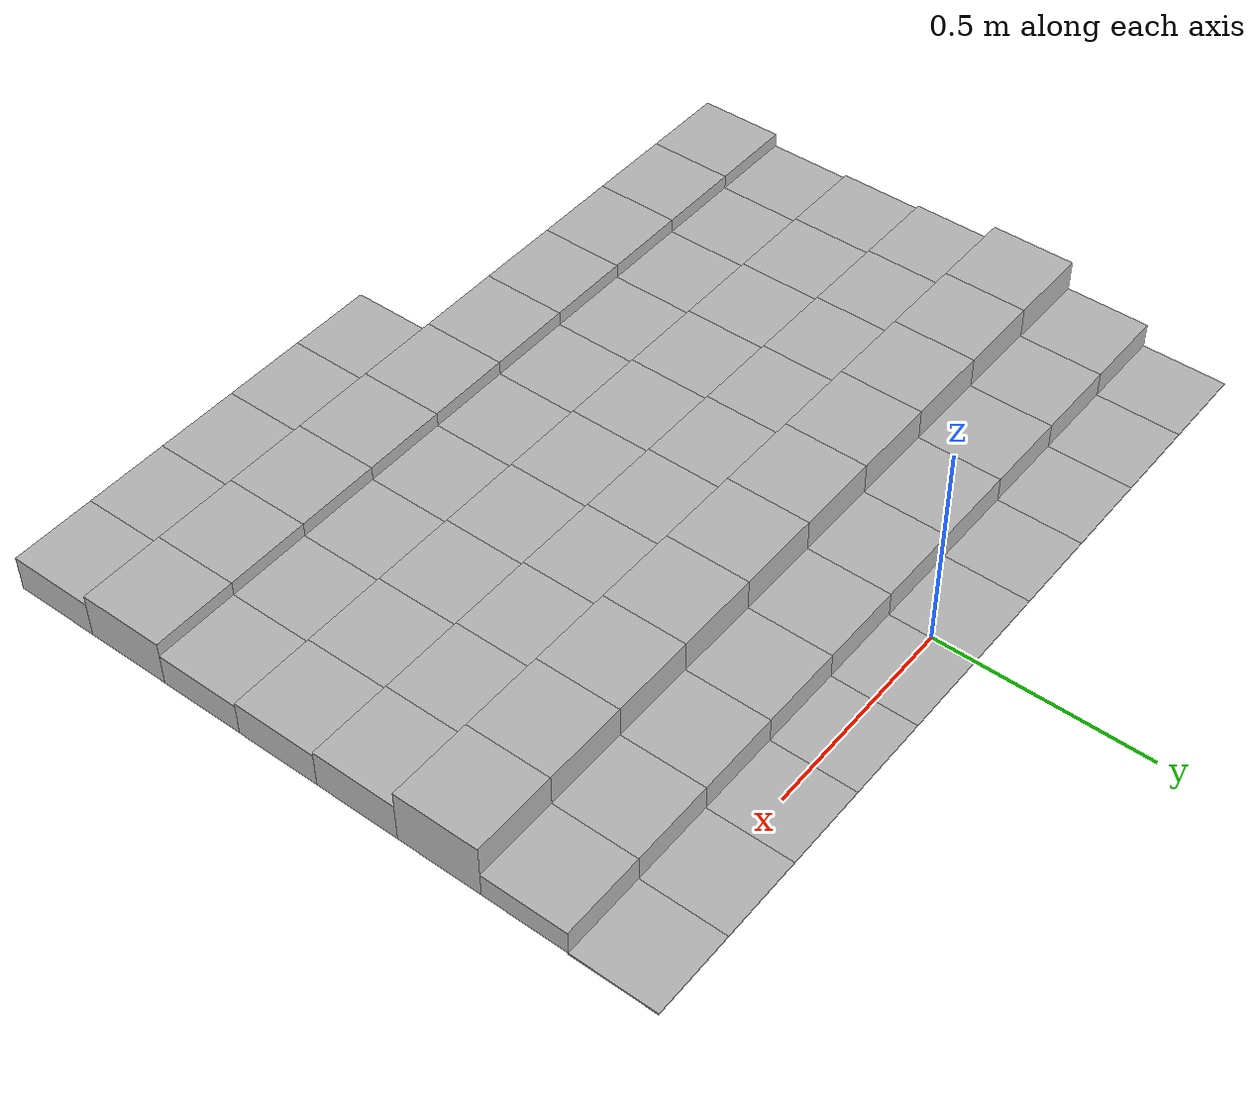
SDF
<sdf version="1.6">
 <model name="Terrain">
  <static>true</static>
  <link name="box_0_0">
   <pose>-0.9 0.0 -0.00175128134562 0 0 0</pose>
   <inertial>
    <mass>1.0</mass>
    <inertia><ixx>0.0</ixx><ixy>0.0</ixy><ixz>0.0</ixz><iyy>0.0</iyy><iyz>0.0</iyz><izz>0.0</izz></inertia>
   </inertial>
   <collision name="collision"><geometry><box><size>0.2 0.2 -0.00350256269124</size></box></geometry></collision>
   <visual name="visual"><geometry><box><size>0.2 0.2 -0.00350256269124</size></box></geometry></visual>
  </link>
  <link name="box_0_1">
   <pose>-0.7 0.0 -0.00175128134562 0 0 0</pose>
   <inertial>
    <mass>1.0</mass>
    <inertia><ixx>0.0</ixx><ixy>0.0</ixy><ixz>0.0</ixz><iyy>0.0</iyy><iyz>0.0</iyz><izz>0.0</izz></inertia>
   </inertial>
   <collision name="collision"><geometry><box><size>0.2 0.2 -0.00350256269124</size></box></geometry></collision>
   <visual name="visual"><geometry><box><size>0.2 0.2 -0.00350256269124</size></box></geometry></visual>
  </link>
  <link name="box_0_2">
   <pose>-0.5 0.0 -0.00175128134562 0 0 0</pose>
   <inertial>
    <mass>1.0</mass>
    <inertia><ixx>0.0</ixx><ixy>0.0</ixy><ixz>0.0</ixz><iyy>0.0</iyy><iyz>0.0</iyz><izz>0.0</izz></inertia>
   </inertial>
   <collision name="collision"><geometry><box><size>0.2 0.2 -0.00350256269124</size></box></geometry></collision>
   <visual name="visual"><geometry><box><size>0.2 0.2 -0.00350256269124</size></box></geometry></visual>
  </link>
  <link name="box_0_3">
   <pose>-0.3 0.0 -0.00175128134562 0 0 0</pose>
   <inertial>
    <mass>1.0</mass>
    <inertia><ixx>0.0</ixx><ixy>0.0</ixy><ixz>0.0</ixz><iyy>0.0</iyy><iyz>0.0</iyz><izz>0.0</izz></inertia>
   </inertial>
   <collision name="collision"><geometry><box><size>0.2 0.2 -0.00350256269124</size></box></geometry></collision>
   <visual name="visual"><geometry><box><size>0.2 0.2 -0.00350256269124</size></box></geometry></visual>
  </link>
  <link name="box_0_4">
   <pose>-0.1 0.0 -0.00175128134562 0 0 0</pose>
   <inertial>
    <mass>1.0</mass>
    <inertia><ixx>0.0</ixx><ixy>0.0</ixy><ixz>0.0</ixz><iyy>0.0</iyy><iyz>0.0</iyz><izz>0.0</izz></inertia>
   </inertial>
   <collision name="collision"><geometry><box><size>0.2 0.2 -0.00350256269124</size></box></geometry></collision>
   <visual name="visual"><geometry><box><size>0.2 0.2 -0.00350256269124</size></box></geometry></visual>
  </link>
  <link name="box_0_5">
   <pose>0.1 0.0 -0.00175128134562 0 0 0</pose>
   <inertial>
    <mass>1.0</mass>
    <inertia><ixx>0.0</ixx><ixy>0.0</ixy><ixz>0.0</ixz><iyy>0.0</iyy><iyz>0.0</iyz><izz>0.0</izz></inertia>
   </inertial>
   <collision name="collision"><geometry><box><size>0.2 0.2 -0.00350256269124</size></box></geometry></collision>
   <visual name="visual"><geometry><box><size>0.2 0.2 -0.00350256269124</size></box></geometry></visual>
  </link>
  <link name="box_0_6">
   <pose>0.3 0.0 -0.00175128134562 0 0 0</pose>
   <inertial>
    <mass>1.0</mass>
    <inertia><ixx>0.0</ixx><ixy>0.0</ixy><ixz>0.0</ixz><iyy>0.0</iyy><iyz>0.0</iyz><izz>0.0</izz></inertia>
   </inertial>
   <collision name="collision"><geometry><box><size>0.2 0.2 -0.00350256269124</size></box></geometry></collision>
   <visual name="visual"><geometry><box><size>0.2 0.2 -0.00350256269124</size></box></geometry></visual>
  </link>
  <link name="box_0_7">
   <pose>0.5 0.0 -0.00175128134562 0 0 0</pose>
   <inertial>
    <mass>1.0</mass>
    <inertia><ixx>0.0</ixx><ixy>0.0</ixy><ixz>0.0</ixz><iyy>0.0</iyy><iyz>0.0</iyz><izz>0.0</izz></inertia>
   </inertial>
   <collision name="collision"><geometry><box><size>0.2 0.2 -0.00350256269124</size></box></geometry></collision>
   <visual name="visual"><geometry><box><size>0.2 0.2 -0.00350256269124</size></box></geometry></visual>
  </link>
  <link name="box_0_8">
   <pose>0.7 0.0 -0.00175128134562 0 0 0</pose>
   <inertial>
    <mass>1.0</mass>
    <inertia><ixx>0.0</ixx><ixy>0.0</ixy><ixz>0.0</ixz><iyy>0.0</iyy><iyz>0.0</iyz><izz>0.0</izz></inertia>
   </inertial>
   <collision name="collision"><geometry><box><size>0.2 0.2 -0.00350256269124</size></box></geometry></collision>
   <visual name="visual"><geometry><box><size>0.2 0.2 -0.00350256269124</size></box></geometry></visual>
  </link>
  <link name="box_0_9">
   <pose>0.9 0.0 -0.00175128134562 0 0 0</pose>
   <inertial>
    <mass>1.0</mass>
    <inertia><ixx>0.0</ixx><ixy>0.0</ixy><ixz>0.0</ixz><iyy>0.0</iyy><iyz>0.0</iyz><izz>0.0</izz></inertia>
   </inertial>
   <collision name="collision"><geometry><box><size>0.2 0.2 -0.00350256269124</size></box></geometry></collision>
   <visual name="visual"><geometry><box><size>0.2 0.2 -0.00350256269124</size></box></geometry></visual>
  </link>
  <link name="box_1_0">
   <pose>-0.9 -0.2 0.0297176551222 0 0 0</pose>
   <inertial>
    <mass>1.0</mass>
    <inertia><ixx>0.0</ixx><ixy>0.0</ixy><ixz>0.0</ixz><iyy>0.0</iyy><iyz>0.0</iyz><izz>0.0</izz></inertia>
   </inertial>
   <collision name="collision"><geometry><box><size>0.2 0.2 0.0594353102445</size></box></geometry></collision>
   <visual name="visual"><geometry><box><size>0.2 0.2 0.0594353102445</size></box></geometry></visual>
  </link>
  <link name="box_1_1">
   <pose>-0.7 -0.2 0.0297176551222 0 0 0</pose>
   <inertial>
    <mass>1.0</mass>
    <inertia><ixx>0.0</ixx><ixy>0.0</ixy><ixz>0.0</ixz><iyy>0.0</iyy><iyz>0.0</iyz><izz>0.0</izz></inertia>
   </inertial>
   <collision name="collision"><geometry><box><size>0.2 0.2 0.0594353102445</size></box></geometry></collision>
   <visual name="visual"><geometry><box><size>0.2 0.2 0.0594353102445</size></box></geometry></visual>
  </link>
  <link name="box_1_2">
   <pose>-0.5 -0.2 0.0297176551222 0 0 0</pose>
   <inertial>
    <mass>1.0</mass>
    <inertia><ixx>0.0</ixx><ixy>0.0</ixy><ixz>0.0</ixz><iyy>0.0</iyy><iyz>0.0</iyz><izz>0.0</izz></inertia>
   </inertial>
   <collision name="collision"><geometry><box><size>0.2 0.2 0.0594353102445</size></box></geometry></collision>
   <visual name="visual"><geometry><box><size>0.2 0.2 0.0594353102445</size></box></geometry></visual>
  </link>
  <link name="box_1_3">
   <pose>-0.3 -0.2 0.0297176551222 0 0 0</pose>
   <inertial>
    <mass>1.0</mass>
    <inertia><ixx>0.0</ixx><ixy>0.0</ixy><ixz>0.0</ixz><iyy>0.0</iyy><iyz>0.0</iyz><izz>0.0</izz></inertia>
   </inertial>
   <collision name="collision"><geometry><box><size>0.2 0.2 0.0594353102445</size></box></geometry></collision>
   <visual name="visual"><geometry><box><size>0.2 0.2 0.0594353102445</size></box></geometry></visual>
  </link>
  <link name="box_1_4">
   <pose>-0.1 -0.2 0.0297176551222 0 0 0</pose>
   <inertial>
    <mass>1.0</mass>
    <inertia><ixx>0.0</ixx><ixy>0.0</ixy><ixz>0.0</ixz><iyy>0.0</iyy><iyz>0.0</iyz><izz>0.0</izz></inertia>
   </inertial>
   <collision name="collision"><geometry><box><size>0.2 0.2 0.0594353102445</size></box></geometry></collision>
   <visual name="visual"><geometry><box><size>0.2 0.2 0.0594353102445</size></box></geometry></visual>
  </link>
  <link name="box_1_5">
   <pose>0.1 -0.2 0.0297176551222 0 0 0</pose>
   <inertial>
    <mass>1.0</mass>
    <inertia><ixx>0.0</ixx><ixy>0.0</ixy><ixz>0.0</ixz><iyy>0.0</iyy><iyz>0.0</iyz><izz>0.0</izz></inertia>
   </inertial>
   <collision name="collision"><geometry><box><size>0.2 0.2 0.0594353102445</size></box></geometry></collision>
   <visual name="visual"><geometry><box><size>0.2 0.2 0.0594353102445</size></box></geometry></visual>
  </link>
  <link name="box_1_6">
   <pose>0.3 -0.2 0.0297176551222 0 0 0</pose>
   <inertial>
    <mass>1.0</mass>
    <inertia><ixx>0.0</ixx><ixy>0.0</ixy><ixz>0.0</ixz><iyy>0.0</iyy><iyz>0.0</iyz><izz>0.0</izz></inertia>
   </inertial>
   <collision name="collision"><geometry><box><size>0.2 0.2 0.0594353102445</size></box></geometry></collision>
   <visual name="visual"><geometry><box><size>0.2 0.2 0.0594353102445</size></box></geometry></visual>
  </link>
  <link name="box_1_7">
   <pose>0.5 -0.2 0.0297176551222 0 0 0</pose>
   <inertial>
    <mass>1.0</mass>
    <inertia><ixx>0.0</ixx><ixy>0.0</ixy><ixz>0.0</ixz><iyy>0.0</iyy><iyz>0.0</iyz><izz>0.0</izz></inertia>
   </inertial>
   <collision name="collision"><geometry><box><size>0.2 0.2 0.0594353102445</size></box></geometry></collision>
   <visual name="visual"><geometry><box><size>0.2 0.2 0.0594353102445</size></box></geometry></visual>
  </link>
  <link name="box_1_8">
   <pose>0.7 -0.2 0.0297176551222 0 0 0</pose>
   <inertial>
    <mass>1.0</mass>
    <inertia><ixx>0.0</ixx><ixy>0.0</ixy><ixz>0.0</ixz><iyy>0.0</iyy><iyz>0.0</iyz><izz>0.0</izz></inertia>
   </inertial>
   <collision name="collision"><geometry><box><size>0.2 0.2 0.0594353102445</size></box></geometry></collision>
   <visual name="visual"><geometry><box><size>0.2 0.2 0.0594353102445</size></box></geometry></visual>
  </link>
  <link name="box_1_9">
   <pose>0.9 -0.2 0.0297176551222 0 0 0</pose>
   <inertial>
    <mass>1.0</mass>
    <inertia><ixx>0.0</ixx><ixy>0.0</ixy><ixz>0.0</ixz><iyy>0.0</iyy><iyz>0.0</iyz><izz>0.0</izz></inertia>
   </inertial>
   <collision name="collision"><geometry><box><size>0.2 0.2 0.0594353102445</size></box></geometry></collision>
   <visual name="visual"><geometry><box><size>0.2 0.2 0.0594353102445</size></box></geometry></visual>
  </link>
  <link name="box_2_0">
   <pose>-0.9 -0.4 0.0667990062094 0 0 0</pose>
   <inertial>
    <mass>1.0</mass>
    <inertia><ixx>0.0</ixx><ixy>0.0</ixy><ixz>0.0</ixz><iyy>0.0</iyy><iyz>0.0</iyz><izz>0.0</izz></inertia>
   </inertial>
   <collision name="collision"><geometry><box><size>0.2 0.2 0.133598012419</size></box></geometry></collision>
   <visual name="visual"><geometry><box><size>0.2 0.2 0.133598012419</size></box></geometry></visual>
  </link>
  <link name="box_2_1">
   <pose>-0.7 -0.4 0.0667990062094 0 0 0</pose>
   <inertial>
    <mass>1.0</mass>
    <inertia><ixx>0.0</ixx><ixy>0.0</ixy><ixz>0.0</ixz><iyy>0.0</iyy><iyz>0.0</iyz><izz>0.0</izz></inertia>
   </inertial>
   <collision name="collision"><geometry><box><size>0.2 0.2 0.133598012419</size></box></geometry></collision>
   <visual name="visual"><geometry><box><size>0.2 0.2 0.133598012419</size></box></geometry></visual>
  </link>
  <link name="box_2_2">
   <pose>-0.5 -0.4 0.0667990062094 0 0 0</pose>
   <inertial>
    <mass>1.0</mass>
    <inertia><ixx>0.0</ixx><ixy>0.0</ixy><ixz>0.0</ixz><iyy>0.0</iyy><iyz>0.0</iyz><izz>0.0</izz></inertia>
   </inertial>
   <collision name="collision"><geometry><box><size>0.2 0.2 0.133598012419</size></box></geometry></collision>
   <visual name="visual"><geometry><box><size>0.2 0.2 0.133598012419</size></box></geometry></visual>
  </link>
  <link name="box_2_3">
   <pose>-0.3 -0.4 0.0667990062094 0 0 0</pose>
   <inertial>
    <mass>1.0</mass>
    <inertia><ixx>0.0</ixx><ixy>0.0</ixy><ixz>0.0</ixz><iyy>0.0</iyy><iyz>0.0</iyz><izz>0.0</izz></inertia>
   </inertial>
   <collision name="collision"><geometry><box><size>0.2 0.2 0.133598012419</size></box></geometry></collision>
   <visual name="visual"><geometry><box><size>0.2 0.2 0.133598012419</size></box></geometry></visual>
  </link>
  <link name="box_2_4">
   <pose>-0.1 -0.4 0.0667990062094 0 0 0</pose>
   <inertial>
    <mass>1.0</mass>
    <inertia><ixx>0.0</ixx><ixy>0.0</ixy><ixz>0.0</ixz><iyy>0.0</iyy><iyz>0.0</iyz><izz>0.0</izz></inertia>
   </inertial>
   <collision name="collision"><geometry><box><size>0.2 0.2 0.133598012419</size></box></geometry></collision>
   <visual name="visual"><geometry><box><size>0.2 0.2 0.133598012419</size></box></geometry></visual>
  </link>
  <link name="box_2_5">
   <pose>0.1 -0.4 0.0667990062094 0 0 0</pose>
   <inertial>
    <mass>1.0</mass>
    <inertia><ixx>0.0</ixx><ixy>0.0</ixy><ixz>0.0</ixz><iyy>0.0</iyy><iyz>0.0</iyz><izz>0.0</izz></inertia>
   </inertial>
   <collision name="collision"><geometry><box><size>0.2 0.2 0.133598012419</size></box></geometry></collision>
   <visual name="visual"><geometry><box><size>0.2 0.2 0.133598012419</size></box></geometry></visual>
  </link>
  <link name="box_2_6">
   <pose>0.3 -0.4 0.0667990062094 0 0 0</pose>
   <inertial>
    <mass>1.0</mass>
    <inertia><ixx>0.0</ixx><ixy>0.0</ixy><ixz>0.0</ixz><iyy>0.0</iyy><iyz>0.0</iyz><izz>0.0</izz></inertia>
   </inertial>
   <collision name="collision"><geometry><box><size>0.2 0.2 0.133598012419</size></box></geometry></collision>
   <visual name="visual"><geometry><box><size>0.2 0.2 0.133598012419</size></box></geometry></visual>
  </link>
  <link name="box_2_7">
   <pose>0.5 -0.4 0.0667990062094 0 0 0</pose>
   <inertial>
    <mass>1.0</mass>
    <inertia><ixx>0.0</ixx><ixy>0.0</ixy><ixz>0.0</ixz><iyy>0.0</iyy><iyz>0.0</iyz><izz>0.0</izz></inertia>
   </inertial>
   <collision name="collision"><geometry><box><size>0.2 0.2 0.133598012419</size></box></geometry></collision>
   <visual name="visual"><geometry><box><size>0.2 0.2 0.133598012419</size></box></geometry></visual>
  </link>
  <link name="box_2_8">
   <pose>0.7 -0.4 0.0667990062094 0 0 0</pose>
   <inertial>
    <mass>1.0</mass>
    <inertia><ixx>0.0</ixx><ixy>0.0</ixy><ixz>0.0</ixz><iyy>0.0</iyy><iyz>0.0</iyz><izz>0.0</izz></inertia>
   </inertial>
   <collision name="collision"><geometry><box><size>0.2 0.2 0.133598012419</size></box></geometry></collision>
   <visual name="visual"><geometry><box><size>0.2 0.2 0.133598012419</size></box></geometry></visual>
  </link>
  <link name="box_2_9">
   <pose>0.9 -0.4 0.0667990062094 0 0 0</pose>
   <inertial>
    <mass>1.0</mass>
    <inertia><ixx>0.0</ixx><ixy>0.0</ixy><ixz>0.0</ixz><iyy>0.0</iyy><iyz>0.0</iyz><izz>0.0</izz></inertia>
   </inertial>
   <collision name="collision"><geometry><box><size>0.2 0.2 0.133598012419</size></box></geometry></collision>
   <visual name="visual"><geometry><box><size>0.2 0.2 0.133598012419</size></box></geometry></visual>
  </link>
  <link name="box_3_0">
   <pose>-0.9 -0.6 0.0474315906088 0 0 0</pose>
   <inertial>
    <mass>1.0</mass>
    <inertia><ixx>0.0</ixx><ixy>0.0</ixy><ixz>0.0</ixz><iyy>0.0</iyy><iyz>0.0</iyz><izz>0.0</izz></inertia>
   </inertial>
   <collision name="collision"><geometry><box><size>0.2 0.2 0.0948631812176</size></box></geometry></collision>
   <visual name="visual"><geometry><box><size>0.2 0.2 0.0948631812176</size></box></geometry></visual>
  </link>
  <link name="box_3_1">
   <pose>-0.7 -0.6 0.0474315906088 0 0 0</pose>
   <inertial>
    <mass>1.0</mass>
    <inertia><ixx>0.0</ixx><ixy>0.0</ixy><ixz>0.0</ixz><iyy>0.0</iyy><iyz>0.0</iyz><izz>0.0</izz></inertia>
   </inertial>
   <collision name="collision"><geometry><box><size>0.2 0.2 0.0948631812176</size></box></geometry></collision>
   <visual name="visual"><geometry><box><size>0.2 0.2 0.0948631812176</size></box></geometry></visual>
  </link>
  <link name="box_3_2">
   <pose>-0.5 -0.6 0.0474315906088 0 0 0</pose>
   <inertial>
    <mass>1.0</mass>
    <inertia><ixx>0.0</ixx><ixy>0.0</ixy><ixz>0.0</ixz><iyy>0.0</iyy><iyz>0.0</iyz><izz>0.0</izz></inertia>
   </inertial>
   <collision name="collision"><geometry><box><size>0.2 0.2 0.0948631812176</size></box></geometry></collision>
   <visual name="visual"><geometry><box><size>0.2 0.2 0.0948631812176</size></box></geometry></visual>
  </link>
  <link name="box_3_3">
   <pose>-0.3 -0.6 0.0474315906088 0 0 0</pose>
   <inertial>
    <mass>1.0</mass>
    <inertia><ixx>0.0</ixx><ixy>0.0</ixy><ixz>0.0</ixz><iyy>0.0</iyy><iyz>0.0</iyz><izz>0.0</izz></inertia>
   </inertial>
   <collision name="collision"><geometry><box><size>0.2 0.2 0.0948631812176</size></box></geometry></collision>
   <visual name="visual"><geometry><box><size>0.2 0.2 0.0948631812176</size></box></geometry></visual>
  </link>
  <link name="box_3_4">
   <pose>-0.1 -0.6 0.0474315906088 0 0 0</pose>
   <inertial>
    <mass>1.0</mass>
    <inertia><ixx>0.0</ixx><ixy>0.0</ixy><ixz>0.0</ixz><iyy>0.0</iyy><iyz>0.0</iyz><izz>0.0</izz></inertia>
   </inertial>
   <collision name="collision"><geometry><box><size>0.2 0.2 0.0948631812176</size></box></geometry></collision>
   <visual name="visual"><geometry><box><size>0.2 0.2 0.0948631812176</size></box></geometry></visual>
  </link>
  <link name="box_3_5">
   <pose>0.1 -0.6 0.0474315906088 0 0 0</pose>
   <inertial>
    <mass>1.0</mass>
    <inertia><ixx>0.0</ixx><ixy>0.0</ixy><ixz>0.0</ixz><iyy>0.0</iyy><iyz>0.0</iyz><izz>0.0</izz></inertia>
   </inertial>
   <collision name="collision"><geometry><box><size>0.2 0.2 0.0948631812176</size></box></geometry></collision>
   <visual name="visual"><geometry><box><size>0.2 0.2 0.0948631812176</size></box></geometry></visual>
  </link>
  <link name="box_3_6">
   <pose>0.3 -0.6 0.0474315906088 0 0 0</pose>
   <inertial>
    <mass>1.0</mass>
    <inertia><ixx>0.0</ixx><ixy>0.0</ixy><ixz>0.0</ixz><iyy>0.0</iyy><iyz>0.0</iyz><izz>0.0</izz></inertia>
   </inertial>
   <collision name="collision"><geometry><box><size>0.2 0.2 0.0948631812176</size></box></geometry></collision>
   <visual name="visual"><geometry><box><size>0.2 0.2 0.0948631812176</size></box></geometry></visual>
  </link>
  <link name="box_3_7">
   <pose>0.5 -0.6 0.0474315906088 0 0 0</pose>
   <inertial>
    <mass>1.0</mass>
    <inertia><ixx>0.0</ixx><ixy>0.0</ixy><ixz>0.0</ixz><iyy>0.0</iyy><iyz>0.0</iyz><izz>0.0</izz></inertia>
   </inertial>
   <collision name="collision"><geometry><box><size>0.2 0.2 0.0948631812176</size></box></geometry></collision>
   <visual name="visual"><geometry><box><size>0.2 0.2 0.0948631812176</size></box></geometry></visual>
  </link>
  <link name="box_3_8">
   <pose>0.7 -0.6 0.0474315906088 0 0 0</pose>
   <inertial>
    <mass>1.0</mass>
    <inertia><ixx>0.0</ixx><ixy>0.0</ixy><ixz>0.0</ixz><iyy>0.0</iyy><iyz>0.0</iyz><izz>0.0</izz></inertia>
   </inertial>
   <collision name="collision"><geometry><box><size>0.2 0.2 0.0948631812176</size></box></geometry></collision>
   <visual name="visual"><geometry><box><size>0.2 0.2 0.0948631812176</size></box></geometry></visual>
  </link>
  <link name="box_3_9">
   <pose>0.9 -0.6 0.0474315906088 0 0 0</pose>
   <inertial>
    <mass>1.0</mass>
    <inertia><ixx>0.0</ixx><ixy>0.0</ixy><ixz>0.0</ixz><iyy>0.0</iyy><iyz>0.0</iyz><izz>0.0</izz></inertia>
   </inertial>
   <collision name="collision"><geometry><box><size>0.2 0.2 0.0948631812176</size></box></geometry></collision>
   <visual name="visual"><geometry><box><size>0.2 0.2 0.0948631812176</size></box></geometry></visual>
  </link>
  <link name="box_4_0">
   <pose>-0.9 -0.8 0.0430749912101 0 0 0</pose>
   <inertial>
    <mass>1.0</mass>
    <inertia><ixx>0.0</ixx><ixy>0.0</ixy><ixz>0.0</ixz><iyy>0.0</iyy><iyz>0.0</iyz><izz>0.0</izz></inertia>
   </inertial>
   <collision name="collision"><geometry><box><size>0.2 0.2 0.0861499824202</size></box></geometry></collision>
   <visual name="visual"><geometry><box><size>0.2 0.2 0.0861499824202</size></box></geometry></visual>
  </link>
  <link name="box_4_1">
   <pose>-0.7 -0.8 0.0430749912101 0 0 0</pose>
   <inertial>
    <mass>1.0</mass>
    <inertia><ixx>0.0</ixx><ixy>0.0</ixy><ixz>0.0</ixz><iyy>0.0</iyy><iyz>0.0</iyz><izz>0.0</izz></inertia>
   </inertial>
   <collision name="collision"><geometry><box><size>0.2 0.2 0.0861499824202</size></box></geometry></collision>
   <visual name="visual"><geometry><box><size>0.2 0.2 0.0861499824202</size></box></geometry></visual>
  </link>
  <link name="box_4_2">
   <pose>-0.5 -0.8 0.0430749912101 0 0 0</pose>
   <inertial>
    <mass>1.0</mass>
    <inertia><ixx>0.0</ixx><ixy>0.0</ixy><ixz>0.0</ixz><iyy>0.0</iyy><iyz>0.0</iyz><izz>0.0</izz></inertia>
   </inertial>
   <collision name="collision"><geometry><box><size>0.2 0.2 0.0861499824202</size></box></geometry></collision>
   <visual name="visual"><geometry><box><size>0.2 0.2 0.0861499824202</size></box></geometry></visual>
  </link>
  <link name="box_4_3">
   <pose>-0.3 -0.8 0.0430749912101 0 0 0</pose>
   <inertial>
    <mass>1.0</mass>
    <inertia><ixx>0.0</ixx><ixy>0.0</ixy><ixz>0.0</ixz><iyy>0.0</iyy><iyz>0.0</iyz><izz>0.0</izz></inertia>
   </inertial>
   <collision name="collision"><geometry><box><size>0.2 0.2 0.0861499824202</size></box></geometry></collision>
   <visual name="visual"><geometry><box><size>0.2 0.2 0.0861499824202</size></box></geometry></visual>
  </link>
  <link name="box_4_4">
   <pose>-0.1 -0.8 0.0430749912101 0 0 0</pose>
   <inertial>
    <mass>1.0</mass>
    <inertia><ixx>0.0</ixx><ixy>0.0</ixy><ixz>0.0</ixz><iyy>0.0</iyy><iyz>0.0</iyz><izz>0.0</izz></inertia>
   </inertial>
   <collision name="collision"><geometry><box><size>0.2 0.2 0.0861499824202</size></box></geometry></collision>
   <visual name="visual"><geometry><box><size>0.2 0.2 0.0861499824202</size></box></geometry></visual>
  </link>
  <link name="box_4_5">
   <pose>0.1 -0.8 0.0430749912101 0 0 0</pose>
   <inertial>
    <mass>1.0</mass>
    <inertia><ixx>0.0</ixx><ixy>0.0</ixy><ixz>0.0</ixz><iyy>0.0</iyy><iyz>0.0</iyz><izz>0.0</izz></inertia>
   </inertial>
   <collision name="collision"><geometry><box><size>0.2 0.2 0.0861499824202</size></box></geometry></collision>
   <visual name="visual"><geometry><box><size>0.2 0.2 0.0861499824202</size></box></geometry></visual>
  </link>
  <link name="box_4_6">
   <pose>0.3 -0.8 0.0430749912101 0 0 0</pose>
   <inertial>
    <mass>1.0</mass>
    <inertia><ixx>0.0</ixx><ixy>0.0</ixy><ixz>0.0</ixz><iyy>0.0</iyy><iyz>0.0</iyz><izz>0.0</izz></inertia>
   </inertial>
   <collision name="collision"><geometry><box><size>0.2 0.2 0.0861499824202</size></box></geometry></collision>
   <visual name="visual"><geometry><box><size>0.2 0.2 0.0861499824202</size></box></geometry></visual>
  </link>
  <link name="box_4_7">
   <pose>0.5 -0.8 0.0430749912101 0 0 0</pose>
   <inertial>
    <mass>1.0</mass>
    <inertia><ixx>0.0</ixx><ixy>0.0</ixy><ixz>0.0</ixz><iyy>0.0</iyy><iyz>0.0</iyz><izz>0.0</izz></inertia>
   </inertial>
   <collision name="collision"><geometry><box><size>0.2 0.2 0.0861499824202</size></box></geometry></collision>
   <visual name="visual"><geometry><box><size>0.2 0.2 0.0861499824202</size></box></geometry></visual>
  </link>
  <link name="box_4_8">
   <pose>0.7 -0.8 0.0430749912101 0 0 0</pose>
   <inertial>
    <mass>1.0</mass>
    <inertia><ixx>0.0</ixx><ixy>0.0</ixy><ixz>0.0</ixz><iyy>0.0</iyy><iyz>0.0</iyz><izz>0.0</izz></inertia>
   </inertial>
   <collision name="collision"><geometry><box><size>0.2 0.2 0.0861499824202</size></box></geometry></collision>
   <visual name="visual"><geometry><box><size>0.2 0.2 0.0861499824202</size></box></geometry></visual>
  </link>
  <link name="box_4_9">
   <pose>0.9 -0.8 0.0430749912101 0 0 0</pose>
   <inertial>
    <mass>1.0</mass>
    <inertia><ixx>0.0</ixx><ixy>0.0</ixy><ixz>0.0</ixz><iyy>0.0</iyy><iyz>0.0</iyz><izz>0.0</izz></inertia>
   </inertial>
   <collision name="collision"><geometry><box><size>0.2 0.2 0.0861499824202</size></box></geometry></collision>
   <visual name="visual"><geometry><box><size>0.2 0.2 0.0861499824202</size></box></geometry></visual>
  </link>
  <link name="box_5_0">
   <pose>-0.9 -1.0 0.0387706666926 0 0 0</pose>
   <inertial>
    <mass>1.0</mass>
    <inertia><ixx>0.0</ixx><ixy>0.0</ixy><ixz>0.0</ixz><iyy>0.0</iyy><iyz>0.0</iyz><izz>0.0</izz></inertia>
   </inertial>
   <collision name="collision"><geometry><box><size>0.2 0.2 0.0775413333852</size></box></geometry></collision>
   <visual name="visual"><geometry><box><size>0.2 0.2 0.0775413333852</size></box></geometry></visual>
  </link>
  <link name="box_5_1">
   <pose>-0.7 -1.0 0.0387706666926 0 0 0</pose>
   <inertial>
    <mass>1.0</mass>
    <inertia><ixx>0.0</ixx><ixy>0.0</ixy><ixz>0.0</ixz><iyy>0.0</iyy><iyz>0.0</iyz><izz>0.0</izz></inertia>
   </inertial>
   <collision name="collision"><geometry><box><size>0.2 0.2 0.0775413333852</size></box></geometry></collision>
   <visual name="visual"><geometry><box><size>0.2 0.2 0.0775413333852</size></box></geometry></visual>
  </link>
  <link name="box_5_2">
   <pose>-0.5 -1.0 0.0387706666926 0 0 0</pose>
   <inertial>
    <mass>1.0</mass>
    <inertia><ixx>0.0</ixx><ixy>0.0</ixy><ixz>0.0</ixz><iyy>0.0</iyy><iyz>0.0</iyz><izz>0.0</izz></inertia>
   </inertial>
   <collision name="collision"><geometry><box><size>0.2 0.2 0.0775413333852</size></box></geometry></collision>
   <visual name="visual"><geometry><box><size>0.2 0.2 0.0775413333852</size></box></geometry></visual>
  </link>
  <link name="box_5_3">
   <pose>-0.3 -1.0 0.0387706666926 0 0 0</pose>
   <inertial>
    <mass>1.0</mass>
    <inertia><ixx>0.0</ixx><ixy>0.0</ixy><ixz>0.0</ixz><iyy>0.0</iyy><iyz>0.0</iyz><izz>0.0</izz></inertia>
   </inertial>
   <collision name="collision"><geometry><box><size>0.2 0.2 0.0775413333852</size></box></geometry></collision>
   <visual name="visual"><geometry><box><size>0.2 0.2 0.0775413333852</size></box></geometry></visual>
  </link>
  <link name="box_5_4">
   <pose>-0.1 -1.0 0.0387706666926 0 0 0</pose>
   <inertial>
    <mass>1.0</mass>
    <inertia><ixx>0.0</ixx><ixy>0.0</ixy><ixz>0.0</ixz><iyy>0.0</iyy><iyz>0.0</iyz><izz>0.0</izz></inertia>
   </inertial>
   <collision name="collision"><geometry><box><size>0.2 0.2 0.0775413333852</size></box></geometry></collision>
   <visual name="visual"><geometry><box><size>0.2 0.2 0.0775413333852</size></box></geometry></visual>
  </link>
  <link name="box_5_5">
   <pose>0.1 -1.0 0.0387706666926 0 0 0</pose>
   <inertial>
    <mass>1.0</mass>
    <inertia><ixx>0.0</ixx><ixy>0.0</ixy><ixz>0.0</ixz><iyy>0.0</iyy><iyz>0.0</iyz><izz>0.0</izz></inertia>
   </inertial>
   <collision name="collision"><geometry><box><size>0.2 0.2 0.0775413333852</size></box></geometry></collision>
   <visual name="visual"><geometry><box><size>0.2 0.2 0.0775413333852</size></box></geometry></visual>
  </link>
  <link name="box_5_6">
   <pose>0.3 -1.0 0.0387706666926 0 0 0</pose>
   <inertial>
    <mass>1.0</mass>
    <inertia><ixx>0.0</ixx><ixy>0.0</ixy><ixz>0.0</ixz><iyy>0.0</iyy><iyz>0.0</iyz><izz>0.0</izz></inertia>
   </inertial>
   <collision name="collision"><geometry><box><size>0.2 0.2 0.0775413333852</size></box></geometry></collision>
   <visual name="visual"><geometry><box><size>0.2 0.2 0.0775413333852</size></box></geometry></visual>
  </link>
  <link name="box_5_7">
   <pose>0.5 -1.0 0.0387706666926 0 0 0</pose>
   <inertial>
    <mass>1.0</mass>
    <inertia><ixx>0.0</ixx><ixy>0.0</ixy><ixz>0.0</ixz><iyy>0.0</iyy><iyz>0.0</iyz><izz>0.0</izz></inertia>
   </inertial>
   <collision name="collision"><geometry><box><size>0.2 0.2 0.0775413333852</size></box></geometry></collision>
   <visual name="visual"><geometry><box><size>0.2 0.2 0.0775413333852</size></box></geometry></visual>
  </link>
  <link name="box_5_8">
   <pose>0.7 -1.0 0.0387706666926 0 0 0</pose>
   <inertial>
    <mass>1.0</mass>
    <inertia><ixx>0.0</ixx><ixy>0.0</ixy><ixz>0.0</ixz><iyy>0.0</iyy><iyz>0.0</iyz><izz>0.0</izz></inertia>
   </inertial>
   <collision name="collision"><geometry><box><size>0.2 0.2 0.0775413333852</size></box></geometry></collision>
   <visual name="visual"><geometry><box><size>0.2 0.2 0.0775413333852</size></box></geometry></visual>
  </link>
  <link name="box_5_9">
   <pose>0.9 -1.0 0.0387706666926 0 0 0</pose>
   <inertial>
    <mass>1.0</mass>
    <inertia><ixx>0.0</ixx><ixy>0.0</ixy><ixz>0.0</ixz><iyy>0.0</iyy><iyz>0.0</iyz><izz>0.0</izz></inertia>
   </inertial>
   <collision name="collision"><geometry><box><size>0.2 0.2 0.0775413333852</size></box></geometry></collision>
   <visual name="visual"><geometry><box><size>0.2 0.2 0.0775413333852</size></box></geometry></visual>
  </link>
  <link name="box_6_0">
   <pose>-0.9 -1.2 0.055354435962 0 0 0</pose>
   <inertial>
    <mass>1.0</mass>
    <inertia><ixx>0.0</ixx><ixy>0.0</ixy><ixz>0.0</ixz><iyy>0.0</iyy><iyz>0.0</iyz><izz>0.0</izz></inertia>
   </inertial>
   <collision name="collision"><geometry><box><size>0.2 0.2 0.110708871924</size></box></geometry></collision>
   <visual name="visual"><geometry><box><size>0.2 0.2 0.110708871924</size></box></geometry></visual>
  </link>
  <link name="box_6_1">
   <pose>-0.7 -1.2 0.055354435962 0 0 0</pose>
   <inertial>
    <mass>1.0</mass>
    <inertia><ixx>0.0</ixx><ixy>0.0</ixy><ixz>0.0</ixz><iyy>0.0</iyy><iyz>0.0</iyz><izz>0.0</izz></inertia>
   </inertial>
   <collision name="collision"><geometry><box><size>0.2 0.2 0.110708871924</size></box></geometry></collision>
   <visual name="visual"><geometry><box><size>0.2 0.2 0.110708871924</size></box></geometry></visual>
  </link>
  <link name="box_6_2">
   <pose>-0.5 -1.2 0.055354435962 0 0 0</pose>
   <inertial>
    <mass>1.0</mass>
    <inertia><ixx>0.0</ixx><ixy>0.0</ixy><ixz>0.0</ixz><iyy>0.0</iyy><iyz>0.0</iyz><izz>0.0</izz></inertia>
   </inertial>
   <collision name="collision"><geometry><box><size>0.2 0.2 0.110708871924</size></box></geometry></collision>
   <visual name="visual"><geometry><box><size>0.2 0.2 0.110708871924</size></box></geometry></visual>
  </link>
  <link name="box_6_3">
   <pose>-0.3 -1.2 0.055354435962 0 0 0</pose>
   <inertial>
    <mass>1.0</mass>
    <inertia><ixx>0.0</ixx><ixy>0.0</ixy><ixz>0.0</ixz><iyy>0.0</iyy><iyz>0.0</iyz><izz>0.0</izz></inertia>
   </inertial>
   <collision name="collision"><geometry><box><size>0.2 0.2 0.110708871924</size></box></geometry></collision>
   <visual name="visual"><geometry><box><size>0.2 0.2 0.110708871924</size></box></geometry></visual>
  </link>
  <link name="box_6_4">
   <pose>-0.1 -1.2 0.055354435962 0 0 0</pose>
   <inertial>
    <mass>1.0</mass>
    <inertia><ixx>0.0</ixx><ixy>0.0</ixy><ixz>0.0</ixz><iyy>0.0</iyy><iyz>0.0</iyz><izz>0.0</izz></inertia>
   </inertial>
   <collision name="collision"><geometry><box><size>0.2 0.2 0.110708871924</size></box></geometry></collision>
   <visual name="visual"><geometry><box><size>0.2 0.2 0.110708871924</size></box></geometry></visual>
  </link>
  <link name="box_6_5">
   <pose>0.1 -1.2 0.055354435962 0 0 0</pose>
   <inertial>
    <mass>1.0</mass>
    <inertia><ixx>0.0</ixx><ixy>0.0</ixy><ixz>0.0</ixz><iyy>0.0</iyy><iyz>0.0</iyz><izz>0.0</izz></inertia>
   </inertial>
   <collision name="collision"><geometry><box><size>0.2 0.2 0.110708871924</size></box></geometry></collision>
   <visual name="visual"><geometry><box><size>0.2 0.2 0.110708871924</size></box></geometry></visual>
  </link>
  <link name="box_6_6">
   <pose>0.3 -1.2 0.055354435962 0 0 0</pose>
   <inertial>
    <mass>1.0</mass>
    <inertia><ixx>0.0</ixx><ixy>0.0</ixy><ixz>0.0</ixz><iyy>0.0</iyy><iyz>0.0</iyz><izz>0.0</izz></inertia>
   </inertial>
   <collision name="collision"><geometry><box><size>0.2 0.2 0.110708871924</size></box></geometry></collision>
   <visual name="visual"><geometry><box><size>0.2 0.2 0.110708871924</size></box></geometry></visual>
  </link>
  <link name="box_6_7">
   <pose>0.5 -1.2 0.055354435962 0 0 0</pose>
   <inertial>
    <mass>1.0</mass>
    <inertia><ixx>0.0</ixx><ixy>0.0</ixy><ixz>0.0</ixz><iyy>0.0</iyy><iyz>0.0</iyz><izz>0.0</izz></inertia>
   </inertial>
   <collision name="collision"><geometry><box><size>0.2 0.2 0.110708871924</size></box></geometry></collision>
   <visual name="visual"><geometry><box><size>0.2 0.2 0.110708871924</size></box></geometry></visual>
  </link>
  <link name="box_6_8">
   <pose>0.7 -1.2 0.055354435962 0 0 0</pose>
   <inertial>
    <mass>1.0</mass>
    <inertia><ixx>0.0</ixx><ixy>0.0</ixy><ixz>0.0</ixz><iyy>0.0</iyy><iyz>0.0</iyz><izz>0.0</izz></inertia>
   </inertial>
   <collision name="collision"><geometry><box><size>0.2 0.2 0.110708871924</size></box></geometry></collision>
   <visual name="visual"><geometry><box><size>0.2 0.2 0.110708871924</size></box></geometry></visual>
  </link>
  <link name="box_6_9">
   <pose>0.9 -1.2 0.055354435962 0 0 0</pose>
   <inertial>
    <mass>1.0</mass>
    <inertia><ixx>0.0</ixx><ixy>0.0</ixy><ixz>0.0</ixz><iyy>0.0</iyy><iyz>0.0</iyz><izz>0.0</izz></inertia>
   </inertial>
   <collision name="collision"><geometry><box><size>0.2 0.2 0.110708871924</size></box></geometry></collision>
   <visual name="visual"><geometry><box><size>0.2 0.2 0.110708871924</size></box></geometry></visual>
  </link>
  <link name="box_7_5">
   <pose>0.1 -1.4 0.0434857644418 0 0 0</pose>
   <inertial>
    <mass>1.0</mass>
    <inertia><ixx>0.0</ixx><ixy>0.0</ixy><ixz>0.0</ixz><iyy>0.0</iyy><iyz>0.0</iyz><izz>0.0</izz></inertia>
   </inertial>
   <collision name="collision"><geometry><box><size>0.2 0.2 0.0869715288836</size></box></geometry></collision>
   <visual name="visual"><geometry><box><size>0.2 0.2 0.0869715288836</size></box></geometry></visual>
  </link>
  <link name="box_7_6">
   <pose>0.3 -1.4 0.0434857644418 0 0 0</pose>
   <inertial>
    <mass>1.0</mass>
    <inertia><ixx>0.0</ixx><ixy>0.0</ixy><ixz>0.0</ixz><iyy>0.0</iyy><iyz>0.0</iyz><izz>0.0</izz></inertia>
   </inertial>
   <collision name="collision"><geometry><box><size>0.2 0.2 0.0869715288836</size></box></geometry></collision>
   <visual name="visual"><geometry><box><size>0.2 0.2 0.0869715288836</size></box></geometry></visual>
  </link>
  <link name="box_7_7">
   <pose>0.5 -1.4 0.0434857644418 0 0 0</pose>
   <inertial>
    <mass>1.0</mass>
    <inertia><ixx>0.0</ixx><ixy>0.0</ixy><ixz>0.0</ixz><iyy>0.0</iyy><iyz>0.0</iyz><izz>0.0</izz></inertia>
   </inertial>
   <collision name="collision"><geometry><box><size>0.2 0.2 0.0869715288836</size></box></geometry></collision>
   <visual name="visual"><geometry><box><size>0.2 0.2 0.0869715288836</size></box></geometry></visual>
  </link>
  <link name="box_7_8">
   <pose>0.7 -1.4 0.0434857644418 0 0 0</pose>
   <inertial>
    <mass>1.0</mass>
    <inertia><ixx>0.0</ixx><ixy>0.0</ixy><ixz>0.0</ixz><iyy>0.0</iyy><iyz>0.0</iyz><izz>0.0</izz></inertia>
   </inertial>
   <collision name="collision"><geometry><box><size>0.2 0.2 0.0869715288836</size></box></geometry></collision>
   <visual name="visual"><geometry><box><size>0.2 0.2 0.0869715288836</size></box></geometry></visual>
  </link>
  <link name="box_7_9">
   <pose>0.9 -1.4 0.0434857644418 0 0 0</pose>
   <inertial>
    <mass>1.0</mass>
    <inertia><ixx>0.0</ixx><ixy>0.0</ixy><ixz>0.0</ixz><iyy>0.0</iyy><iyz>0.0</iyz><izz>0.0</izz></inertia>
   </inertial>
   <collision name="collision"><geometry><box><size>0.2 0.2 0.0869715288836</size></box></geometry></collision>
   <visual name="visual"><geometry><box><size>0.2 0.2 0.0869715288836</size></box></geometry></visual>
  </link>
 </model>
</sdf>
